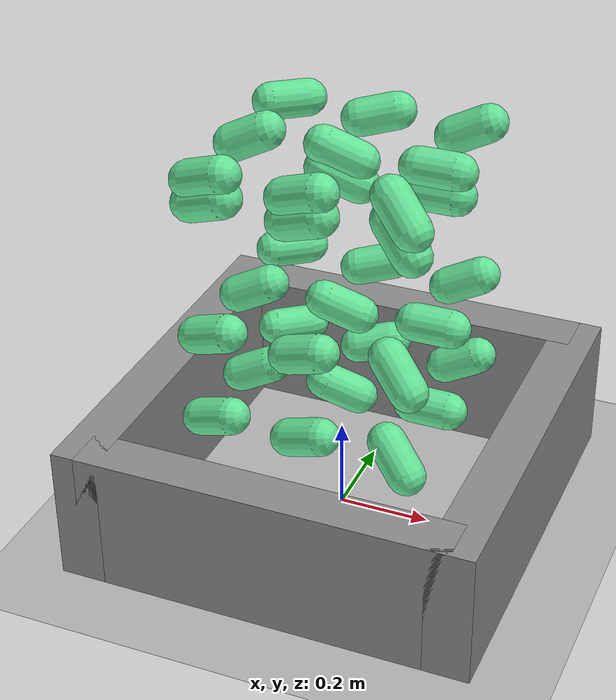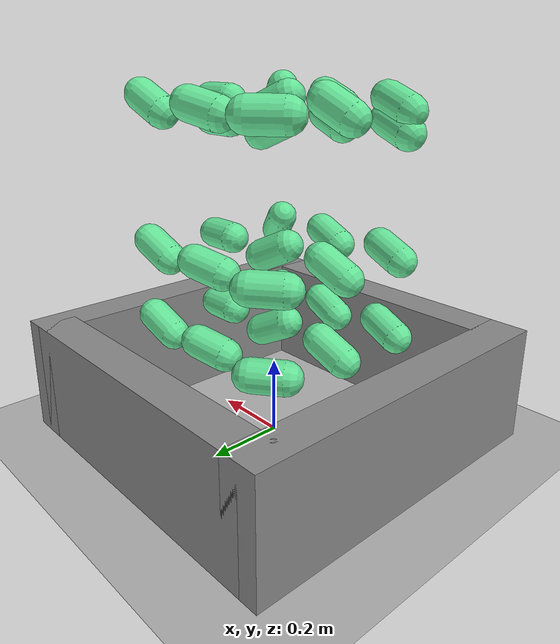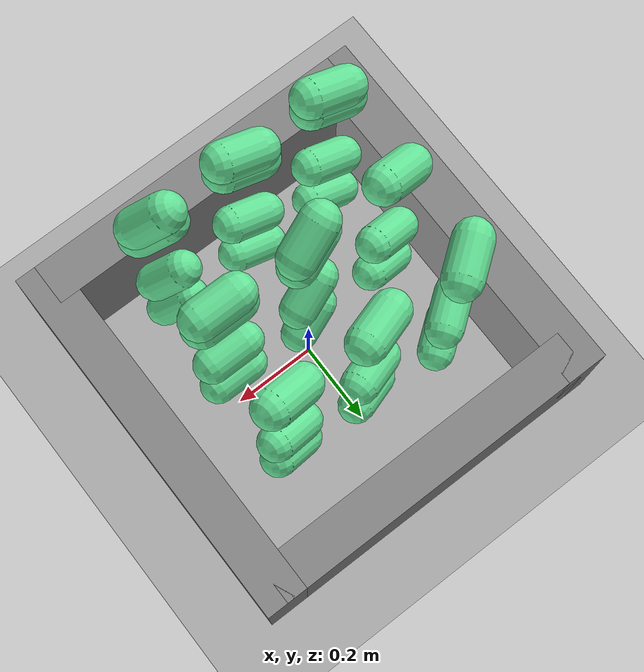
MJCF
<mujoco model="Details in the box">
    <compiler angle="degree"/>

    <option timestep="0.003" iterations="50" solver="Newton" jacobian="sparse" cone="elliptic" tolerance="1e-10"/>

    <size njmax="5000" nconmax="2000" nstack="5000000"/>

    <default>
        <geom solimp=".9 .9 .01"/>

        <default class="object1">
            <geom type="capsule" material="geom" rgba=".4 .9 .6 1" size="0.04 0.04"/>
        </default>

		<default class="borderpost">
            <geom type="box" rgba=".55 .55 .55 1"/>
        </default>
	</default>

    <asset>
        <texture type="skybox" builtin="gradient" width="128" height="128" rgb1=".4 .6 .8" rgb2="0 0 0"/>
        <texture name="texgeom" type="cube" builtin="flat" mark="cross" width="128" height="128"
            rgb1="0.6 0.6 0.6" rgb2="0.6 0.6 0.6" markrgb="1 1 1"/>
        <texture name="texplane" type="2d" builtin="checker" rgb1=".4 .4 .4" rgb2=".6 .6 .6"
            width="512" height="512"/>
        <material name='geom' texture="texgeom" texuniform="true"/>
        <material name='MatPlane' reflectance='0.3' texture="texplane" texrepeat="1 1" texuniform="true"/>
    </asset>

    <visual>
        <quality shadowsize="4096" offsamples="8"/>
        <map znear="0.1" force="0.05"/>
    </visual>

    <statistic extent="4"/>

    <worldbody>
        <light directional="true" diffuse=".8 .8 .8" pos="0 0 10" dir="0 0 -10"/>
        <geom pos="0 0 0" type="plane" size="3 3 .5" rgba=".7 .7 .7 1" material="MatPlane"/>

		<!-- Borders -->
		<body pos=".4 .0 .15">
            <geom class="borderpost" size=".05 .45 .15"/>
        </body>
		<body pos="0 -.4 .15">
            <geom class="borderpost" size=".4 .05 .15"/>
        </body>
		<body pos="-.4 0 .15">
            <geom class="borderpost" size=".05 .45 .15"/>
        </body>
		<body pos="0 .4 .15">
            <geom class="borderpost" size=".4 .05 .15"/>
        </body>

		<!-- Details -->
        <body pos="-0.2 0.2 .3" quat="-0.632456 -0.632456 0.316228 0.316228">
            <freejoint/>
            <geom class="object1"/>
        </body>
        <body pos="0 0.2 .3" quat="-0.5547 -0.5547 0.5547 0.27735">
            <freejoint/>
            <geom class="object1"/>
        </body>
        <body pos="0.2 0.2 .3" quat="-0.471405 -0.471405 0.707107 0.235702">
            <freejoint/>
            <geom class="object1"/>
        </body>
        <body pos="-0.2 0 .3" quat="-0.471405 -0.471405 0.707107 0.235702">
            <freejoint/>
            <geom class="object1"/>
        </body>

        <body pos="0 0 .3" quat="-0.755929 -0.377964 0.377964 0.377964">
            <freejoint/>
            <geom class="object1"/>
        </body>
        <body pos="0.2 0 .3" quat="-0.632456 -0.316228 0.632456 0.316228">
            <freejoint/>
            <geom class="object1"/>
        </body>
        <body pos="-0.2 -0.2 .3" quat="-0.516398 -0.258199 0.774597 0.258199">
            <freejoint/>
            <geom class="object1"/>
        </body>
        <body pos="0 -0.2 .3" quat="-0.516398 -0.258199 0.774597 0.258199">
            <freejoint/>
            <geom class="object1"/>
        </body>

        <body pos="0.2 -0.2 .3" quat="-0.816497 0 0.408248 0.408248">
            <freejoint/>
            <geom class="object1"/>
        </body>

        <body pos="-0.2 0.2 .5" quat="-0.632456 -0.632456 0.316228 0.316228">
            <freejoint/>
            <geom class="object1"/>
        </body>
        <body pos="0 0.2 .5" quat="-0.5547 -0.5547 0.5547 0.27735">
            <freejoint/>
            <geom class="object1"/>
        </body>
        <body pos="0.2 0.2 .5" quat="-0.471405 -0.471405 0.707107 0.235702">
            <freejoint/>
            <geom class="object1"/>
        </body>
        <body pos="-0.2 0 .5" quat="-0.471405 -0.471405 0.707107 0.235702">
            <freejoint/>
            <geom class="object1"/>
        </body>
        <body pos="0 0 .5" quat="-0.755929 -0.377964 0.377964 0.377964">
            <freejoint/>
            <geom class="object1"/>
        </body>
        <body pos="0.2 0 .5" quat="-0.632456 -0.316228 0.632456 0.316228">
            <freejoint/>
            <geom class="object1"/>
        </body>
        <body pos="-0.2 -0.2 .5" quat="-0.516398 -0.258199 0.774597 0.258199">
            <freejoint/>
            <geom class="object1"/>
        </body>
        <body pos="0 -0.2 .5" quat="-0.516398 -0.258199 0.774597 0.258199">
            <freejoint/>
            <geom class="object1"/>
        </body>

        <body pos="0.2 -0.2 .5" quat="-0.816497 0 0.408248 0.408248">
            <freejoint/>
            <geom class="object1"/>
        </body>

		<body pos="0 0 .8" quat="-0.755929 -0.377964 0.377964 0.377964">
            <freejoint/>
            <geom class="object1"/>
        </body>
        <body pos="0.2 0 .8" quat="-0.632456 -0.316228 0.632456 0.316228">
            <freejoint/>
            <geom class="object1"/>
        </body>
        <body pos="-0.2 -0.2 .8" quat="-0.516398 -0.258199 0.774597 0.258199">
            <freejoint/>
            <geom class="object1"/>
        </body>
        <body pos="0 -0.2 .8" quat="-0.516398 -0.258199 0.774597 0.258199">
            <freejoint/>
            <geom class="object1"/>
        </body>
        <body pos="0.2 -0.2 .8" quat="-0.816497 0 0.408248 0.408248">
            <freejoint/>
            <geom class="object1"/>
        </body>

        <body pos="-0.2 0.2 .85" quat="-0.632456 -0.632456 0.316228 0.316228">
            <freejoint/>
            <geom class="object1"/>
        </body>
        <body pos="0 0.2 .85" quat="-0.5547 -0.5547 0.5547 0.27735">
            <freejoint/>
            <geom class="object1"/>
        </body>
        <body pos="0.2 0.2 .85" quat="-0.471405 -0.471405 0.707107 0.235702">
            <freejoint/>
            <geom class="object1"/>
        </body>
        <body pos="-0.2 0 .85" quat="-0.471405 -0.471405 0.707107 0.235702">
            <freejoint/>
            <geom class="object1"/>
        </body>
        <body pos="0 0 .85" quat="-0.755929 -0.377964 0.377964 0.377964">
            <freejoint/>
            <geom class="object1"/>
        </body>
        <body pos="0.2 0 .85" quat="-0.632456 -0.316228 0.632456 0.316228">
            <freejoint/>
            <geom class="object1"/>
        </body>
        <body pos="-0.2 -0.2 .85" quat="-0.516398 -0.258199 0.774597 0.258199">
            <freejoint/>
            <geom class="object1"/>
        </body>
        <body pos="0 -0.2 .85" quat="-0.516398 -0.258199 0.774597 0.258199">
            <freejoint/>
            <geom class="object1"/>
        </body>
        <body pos="0.2 -0.2 .85" quat="-0.816497 0 0.408248 0.408248">
            <freejoint/>
            <geom class="object1"/>
        </body>

    </worldbody>
</mujoco>
